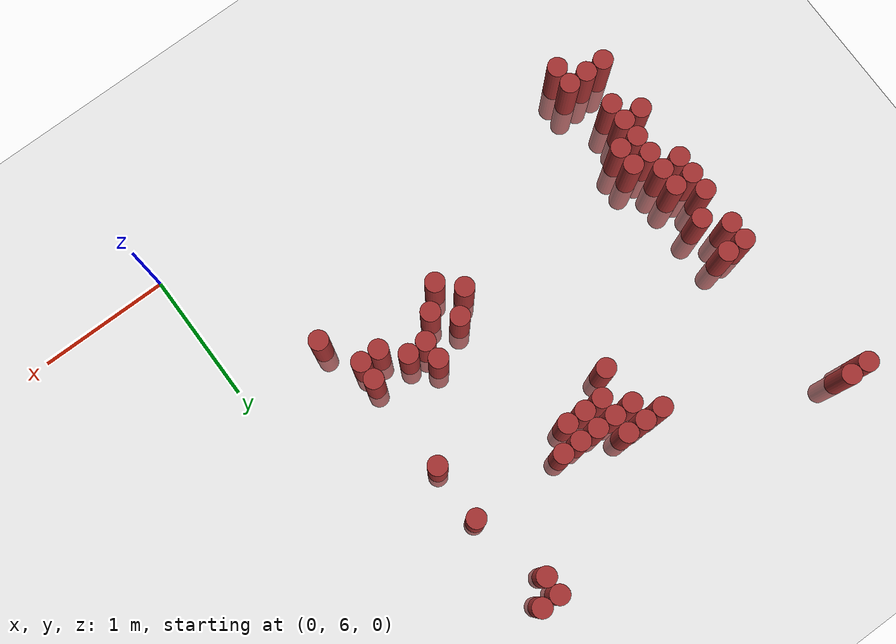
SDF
<sdf version="1.6">
 <world name="default">
  <model name="ground_plane">
   <static>1</static>
   <link name="link">
    <collision name="collision">
     <geometry><plane><normal>0 0 1</normal><size>100 100</size></plane></geometry>
     <surface><friction><ode><mu>100</mu><mu2>50</mu2></ode></friction></surface>
    </collision>
    <visual name="visual">
     <cast_shadows>0</cast_shadows>
     <geometry><plane><normal>0 0 1</normal><size>100 100</size></plane></geometry>
     <material>
      <script><uri>file://media/materials/scripts/gazebo.material</uri><name>Gazebo/Grey</name></script>
     </material>
    </visual>
   </link>
  </model>
  <model name="unit_cylinder_167">
   <static>1</static>
   <pose>-3.675000 9.525000 0.000000 0.000000 0.000000 0.000000</pose>
   <link name="link">
    <inertial>
     <mass>1</mass>
     <inertia><ixx>0.145833</ixx><ixy>0</ixy><ixz>0</ixz><iyy>0.145833</iyy><iyz>0</iyz><izz>0.125</izz></inertia>
    </inertial>
    <collision name="collision">
     <geometry><cylinder><radius>0.075000</radius><length>1</length></cylinder></geometry>
    </collision>
    <visual name="visual">
     <geometry><cylinder><radius>0.075000</radius><length>1</length></cylinder></geometry>
     <material>
      <ambient>0.648000 0.192000 0.192000 1</ambient>
      <diffuse>0.648000 0.192000 0.192000 1</diffuse>
     </material>
     <material>
      <script><name>Gazebo/Grey</name><uri>file://media/materials/scripts/gazebo.material</uri></script>
     </material>
    </visual>
   </link>
  </model>
  <model name="unit_cylinder_169">
   <static>1</static>
   <pose>-3.525000 6.675000 0.000000 0.000000 0.000000 0.000000</pose>
   <link name="link">
    <inertial>
     <mass>1</mass>
     <inertia><ixx>0.145833</ixx><ixy>0</ixy><ixz>0</ixz><iyy>0.145833</iyy><iyz>0</iyz><izz>0.125</izz></inertia>
    </inertial>
    <collision name="collision">
     <geometry><cylinder><radius>0.075000</radius><length>1</length></cylinder></geometry>
    </collision>
    <visual name="visual">
     <geometry><cylinder><radius>0.075000</radius><length>1</length></cylinder></geometry>
     <material>
      <ambient>0.648000 0.192000 0.192000 1</ambient>
      <diffuse>0.648000 0.192000 0.192000 1</diffuse>
     </material>
     <material>
      <script><name>Gazebo/Grey</name><uri>file://media/materials/scripts/gazebo.material</uri></script>
     </material>
    </visual>
   </link>
  </model>
  <model name="unit_cylinder_170">
   <static>1</static>
   <pose>-3.525000 7.125000 0.000000 0.000000 0.000000 0.000000</pose>
   <link name="link">
    <inertial>
     <mass>1</mass>
     <inertia><ixx>0.145833</ixx><ixy>0</ixy><ixz>0</ixz><iyy>0.145833</iyy><iyz>0</iyz><izz>0.125</izz></inertia>
    </inertial>
    <collision name="collision">
     <geometry><cylinder><radius>0.075000</radius><length>1</length></cylinder></geometry>
    </collision>
    <visual name="visual">
     <geometry><cylinder><radius>0.075000</radius><length>1</length></cylinder></geometry>
     <material>
      <ambient>0.648000 0.192000 0.192000 1</ambient>
      <diffuse>0.648000 0.192000 0.192000 1</diffuse>
     </material>
     <material>
      <script><name>Gazebo/Grey</name><uri>file://media/materials/scripts/gazebo.material</uri></script>
     </material>
    </visual>
   </link>
  </model>
  <model name="unit_cylinder_171">
   <static>1</static>
   <pose>-3.525000 7.575000 0.000000 0.000000 0.000000 0.000000</pose>
   <link name="link">
    <inertial>
     <mass>1</mass>
     <inertia><ixx>0.145833</ixx><ixy>0</ixy><ixz>0</ixz><iyy>0.145833</iyy><iyz>0</iyz><izz>0.125</izz></inertia>
    </inertial>
    <collision name="collision">
     <geometry><cylinder><radius>0.075000</radius><length>1</length></cylinder></geometry>
    </collision>
    <visual name="visual">
     <geometry><cylinder><radius>0.075000</radius><length>1</length></cylinder></geometry>
     <material>
      <ambient>0.648000 0.192000 0.192000 1</ambient>
      <diffuse>0.648000 0.192000 0.192000 1</diffuse>
     </material>
     <material>
      <script><name>Gazebo/Grey</name><uri>file://media/materials/scripts/gazebo.material</uri></script>
     </material>
    </visual>
   </link>
  </model>
  <model name="unit_cylinder_172">
   <static>1</static>
   <pose>-3.525000 7.725000 0.000000 0.000000 0.000000 0.000000</pose>
   <link name="link">
    <inertial>
     <mass>1</mass>
     <inertia><ixx>0.145833</ixx><ixy>0</ixy><ixz>0</ixz><iyy>0.145833</iyy><iyz>0</iyz><izz>0.125</izz></inertia>
    </inertial>
    <collision name="collision">
     <geometry><cylinder><radius>0.075000</radius><length>1</length></cylinder></geometry>
    </collision>
    <visual name="visual">
     <geometry><cylinder><radius>0.075000</radius><length>1</length></cylinder></geometry>
     <material>
      <ambient>0.648000 0.192000 0.192000 1</ambient>
      <diffuse>0.648000 0.192000 0.192000 1</diffuse>
     </material>
     <material>
      <script><name>Gazebo/Grey</name><uri>file://media/materials/scripts/gazebo.material</uri></script>
     </material>
    </visual>
   </link>
  </model>
  <model name="unit_cylinder_173">
   <static>1</static>
   <pose>-3.525000 7.875000 0.000000 0.000000 0.000000 0.000000</pose>
   <link name="link">
    <inertial>
     <mass>1</mass>
     <inertia><ixx>0.145833</ixx><ixy>0</ixy><ixz>0</ixz><iyy>0.145833</iyy><iyz>0</iyz><izz>0.125</izz></inertia>
    </inertial>
    <collision name="collision">
     <geometry><cylinder><radius>0.075000</radius><length>1</length></cylinder></geometry>
    </collision>
    <visual name="visual">
     <geometry><cylinder><radius>0.075000</radius><length>1</length></cylinder></geometry>
     <material>
      <ambient>0.648000 0.192000 0.192000 1</ambient>
      <diffuse>0.648000 0.192000 0.192000 1</diffuse>
     </material>
     <material>
      <script><name>Gazebo/Grey</name><uri>file://media/materials/scripts/gazebo.material</uri></script>
     </material>
    </visual>
   </link>
  </model>
  <model name="unit_cylinder_174">
   <static>1</static>
   <pose>-3.525000 8.175000 0.000000 0.000000 0.000000 0.000000</pose>
   <link name="link">
    <inertial>
     <mass>1</mass>
     <inertia><ixx>0.145833</ixx><ixy>0</ixy><ixz>0</ixz><iyy>0.145833</iyy><iyz>0</iyz><izz>0.125</izz></inertia>
    </inertial>
    <collision name="collision">
     <geometry><cylinder><radius>0.075000</radius><length>1</length></cylinder></geometry>
    </collision>
    <visual name="visual">
     <geometry><cylinder><radius>0.075000</radius><length>1</length></cylinder></geometry>
     <material>
      <ambient>0.648000 0.192000 0.192000 1</ambient>
      <diffuse>0.648000 0.192000 0.192000 1</diffuse>
     </material>
     <material>
      <script><name>Gazebo/Grey</name><uri>file://media/materials/scripts/gazebo.material</uri></script>
     </material>
    </visual>
   </link>
  </model>
  <model name="unit_cylinder_175">
   <static>1</static>
   <pose>-3.525000 8.325000 0.000000 0.000000 0.000000 0.000000</pose>
   <link name="link">
    <inertial>
     <mass>1</mass>
     <inertia><ixx>0.145833</ixx><ixy>0</ixy><ixz>0</ixz><iyy>0.145833</iyy><iyz>0</iyz><izz>0.125</izz></inertia>
    </inertial>
    <collision name="collision">
     <geometry><cylinder><radius>0.075000</radius><length>1</length></cylinder></geometry>
    </collision>
    <visual name="visual">
     <geometry><cylinder><radius>0.075000</radius><length>1</length></cylinder></geometry>
     <material>
      <ambient>0.648000 0.192000 0.192000 1</ambient>
      <diffuse>0.648000 0.192000 0.192000 1</diffuse>
     </material>
     <material>
      <script><name>Gazebo/Grey</name><uri>file://media/materials/scripts/gazebo.material</uri></script>
     </material>
    </visual>
   </link>
  </model>
  <model name="unit_cylinder_176">
   <static>1</static>
   <pose>-3.525000 9.525000 0.000000 0.000000 0.000000 0.000000</pose>
   <link name="link">
    <inertial>
     <mass>1</mass>
     <inertia><ixx>0.145833</ixx><ixy>0</ixy><ixz>0</ixz><iyy>0.145833</iyy><iyz>0</iyz><izz>0.125</izz></inertia>
    </inertial>
    <collision name="collision">
     <geometry><cylinder><radius>0.075000</radius><length>1</length></cylinder></geometry>
    </collision>
    <visual name="visual">
     <geometry><cylinder><radius>0.075000</radius><length>1</length></cylinder></geometry>
     <material>
      <ambient>0.648000 0.192000 0.192000 1</ambient>
      <diffuse>0.648000 0.192000 0.192000 1</diffuse>
     </material>
     <material>
      <script><name>Gazebo/Grey</name><uri>file://media/materials/scripts/gazebo.material</uri></script>
     </material>
    </visual>
   </link>
  </model>
  <model name="unit_cylinder_179">
   <static>1</static>
   <pose>-3.375000 6.675000 0.000000 0.000000 0.000000 0.000000</pose>
   <link name="link">
    <inertial>
     <mass>1</mass>
     <inertia><ixx>0.145833</ixx><ixy>0</ixy><ixz>0</ixz><iyy>0.145833</iyy><iyz>0</iyz><izz>0.125</izz></inertia>
    </inertial>
    <collision name="collision">
     <geometry><cylinder><radius>0.075000</radius><length>1</length></cylinder></geometry>
    </collision>
    <visual name="visual">
     <geometry><cylinder><radius>0.075000</radius><length>1</length></cylinder></geometry>
     <material>
      <ambient>0.648000 0.192000 0.192000 1</ambient>
      <diffuse>0.648000 0.192000 0.192000 1</diffuse>
     </material>
     <material>
      <script><name>Gazebo/Grey</name><uri>file://media/materials/scripts/gazebo.material</uri></script>
     </material>
    </visual>
   </link>
  </model>
  <model name="unit_cylinder_180">
   <static>1</static>
   <pose>-3.375000 6.975000 0.000000 0.000000 0.000000 0.000000</pose>
   <link name="link">
    <inertial>
     <mass>1</mass>
     <inertia><ixx>0.145833</ixx><ixy>0</ixy><ixz>0</ixz><iyy>0.145833</iyy><iyz>0</iyz><izz>0.125</izz></inertia>
    </inertial>
    <collision name="collision">
     <geometry><cylinder><radius>0.075000</radius><length>1</length></cylinder></geometry>
    </collision>
    <visual name="visual">
     <geometry><cylinder><radius>0.075000</radius><length>1</length></cylinder></geometry>
     <material>
      <ambient>0.648000 0.192000 0.192000 1</ambient>
      <diffuse>0.648000 0.192000 0.192000 1</diffuse>
     </material>
     <material>
      <script><name>Gazebo/Grey</name><uri>file://media/materials/scripts/gazebo.material</uri></script>
     </material>
    </visual>
   </link>
  </model>
  <model name="unit_cylinder_181">
   <static>1</static>
   <pose>-3.375000 7.125000 0.000000 0.000000 0.000000 0.000000</pose>
   <link name="link">
    <inertial>
     <mass>1</mass>
     <inertia><ixx>0.145833</ixx><ixy>0</ixy><ixz>0</ixz><iyy>0.145833</iyy><iyz>0</iyz><izz>0.125</izz></inertia>
    </inertial>
    <collision name="collision">
     <geometry><cylinder><radius>0.075000</radius><length>1</length></cylinder></geometry>
    </collision>
    <visual name="visual">
     <geometry><cylinder><radius>0.075000</radius><length>1</length></cylinder></geometry>
     <material>
      <ambient>0.648000 0.192000 0.192000 1</ambient>
      <diffuse>0.648000 0.192000 0.192000 1</diffuse>
     </material>
     <material>
      <script><name>Gazebo/Grey</name><uri>file://media/materials/scripts/gazebo.material</uri></script>
     </material>
    </visual>
   </link>
  </model>
  <model name="unit_cylinder_182">
   <static>1</static>
   <pose>-3.375000 7.275000 0.000000 0.000000 0.000000 0.000000</pose>
   <link name="link">
    <inertial>
     <mass>1</mass>
     <inertia><ixx>0.145833</ixx><ixy>0</ixy><ixz>0</ixz><iyy>0.145833</iyy><iyz>0</iyz><izz>0.125</izz></inertia>
    </inertial>
    <collision name="collision">
     <geometry><cylinder><radius>0.075000</radius><length>1</length></cylinder></geometry>
    </collision>
    <visual name="visual">
     <geometry><cylinder><radius>0.075000</radius><length>1</length></cylinder></geometry>
     <material>
      <ambient>0.648000 0.192000 0.192000 1</ambient>
      <diffuse>0.648000 0.192000 0.192000 1</diffuse>
     </material>
     <material>
      <script><name>Gazebo/Grey</name><uri>file://media/materials/scripts/gazebo.material</uri></script>
     </material>
    </visual>
   </link>
  </model>
  <model name="unit_cylinder_183">
   <static>1</static>
   <pose>-3.375000 7.425000 0.000000 0.000000 0.000000 0.000000</pose>
   <link name="link">
    <inertial>
     <mass>1</mass>
     <inertia><ixx>0.145833</ixx><ixy>0</ixy><ixz>0</ixz><iyy>0.145833</iyy><iyz>0</iyz><izz>0.125</izz></inertia>
    </inertial>
    <collision name="collision">
     <geometry><cylinder><radius>0.075000</radius><length>1</length></cylinder></geometry>
    </collision>
    <visual name="visual">
     <geometry><cylinder><radius>0.075000</radius><length>1</length></cylinder></geometry>
     <material>
      <ambient>0.648000 0.192000 0.192000 1</ambient>
      <diffuse>0.648000 0.192000 0.192000 1</diffuse>
     </material>
     <material>
      <script><name>Gazebo/Grey</name><uri>file://media/materials/scripts/gazebo.material</uri></script>
     </material>
    </visual>
   </link>
  </model>
  <model name="unit_cylinder_184">
   <static>1</static>
   <pose>-3.375000 7.575000 0.000000 0.000000 0.000000 0.000000</pose>
   <link name="link">
    <inertial>
     <mass>1</mass>
     <inertia><ixx>0.145833</ixx><ixy>0</ixy><ixz>0</ixz><iyy>0.145833</iyy><iyz>0</iyz><izz>0.125</izz></inertia>
    </inertial>
    <collision name="collision">
     <geometry><cylinder><radius>0.075000</radius><length>1</length></cylinder></geometry>
    </collision>
    <visual name="visual">
     <geometry><cylinder><radius>0.075000</radius><length>1</length></cylinder></geometry>
     <material>
      <ambient>0.648000 0.192000 0.192000 1</ambient>
      <diffuse>0.648000 0.192000 0.192000 1</diffuse>
     </material>
     <material>
      <script><name>Gazebo/Grey</name><uri>file://media/materials/scripts/gazebo.material</uri></script>
     </material>
    </visual>
   </link>
  </model>
  <model name="unit_cylinder_185">
   <static>1</static>
   <pose>-3.375000 7.725000 0.000000 0.000000 0.000000 0.000000</pose>
   <link name="link">
    <inertial>
     <mass>1</mass>
     <inertia><ixx>0.145833</ixx><ixy>0</ixy><ixz>0</ixz><iyy>0.145833</iyy><iyz>0</iyz><izz>0.125</izz></inertia>
    </inertial>
    <collision name="collision">
     <geometry><cylinder><radius>0.075000</radius><length>1</length></cylinder></geometry>
    </collision>
    <visual name="visual">
     <geometry><cylinder><radius>0.075000</radius><length>1</length></cylinder></geometry>
     <material>
      <ambient>0.648000 0.192000 0.192000 1</ambient>
      <diffuse>0.648000 0.192000 0.192000 1</diffuse>
     </material>
     <material>
      <script><name>Gazebo/Grey</name><uri>file://media/materials/scripts/gazebo.material</uri></script>
     </material>
    </visual>
   </link>
  </model>
  <model name="unit_cylinder_186">
   <static>1</static>
   <pose>-3.375000 8.025000 0.000000 0.000000 0.000000 0.000000</pose>
   <link name="link">
    <inertial>
     <mass>1</mass>
     <inertia><ixx>0.145833</ixx><ixy>0</ixy><ixz>0</ixz><iyy>0.145833</iyy><iyz>0</iyz><izz>0.125</izz></inertia>
    </inertial>
    <collision name="collision">
     <geometry><cylinder><radius>0.075000</radius><length>1</length></cylinder></geometry>
    </collision>
    <visual name="visual">
     <geometry><cylinder><radius>0.075000</radius><length>1</length></cylinder></geometry>
     <material>
      <ambient>0.648000 0.192000 0.192000 1</ambient>
      <diffuse>0.648000 0.192000 0.192000 1</diffuse>
     </material>
     <material>
      <script><name>Gazebo/Grey</name><uri>file://media/materials/scripts/gazebo.material</uri></script>
     </material>
    </visual>
   </link>
  </model>
  <model name="unit_cylinder_187">
   <static>1</static>
   <pose>-3.375000 8.325000 0.000000 0.000000 0.000000 0.000000</pose>
   <link name="link">
    <inertial>
     <mass>1</mass>
     <inertia><ixx>0.145833</ixx><ixy>0</ixy><ixz>0</ixz><iyy>0.145833</iyy><iyz>0</iyz><izz>0.125</izz></inertia>
    </inertial>
    <collision name="collision">
     <geometry><cylinder><radius>0.075000</radius><length>1</length></cylinder></geometry>
    </collision>
    <visual name="visual">
     <geometry><cylinder><radius>0.075000</radius><length>1</length></cylinder></geometry>
     <material>
      <ambient>0.648000 0.192000 0.192000 1</ambient>
      <diffuse>0.648000 0.192000 0.192000 1</diffuse>
     </material>
     <material>
      <script><name>Gazebo/Grey</name><uri>file://media/materials/scripts/gazebo.material</uri></script>
     </material>
    </visual>
   </link>
  </model>
  <model name="unit_cylinder_194">
   <static>1</static>
   <pose>-3.225000 6.525000 0.000000 0.000000 0.000000 0.000000</pose>
   <link name="link">
    <inertial>
     <mass>1</mass>
     <inertia><ixx>0.145833</ixx><ixy>0</ixy><ixz>0</ixz><iyy>0.145833</iyy><iyz>0</iyz><izz>0.125</izz></inertia>
    </inertial>
    <collision name="collision">
     <geometry><cylinder><radius>0.075000</radius><length>1</length></cylinder></geometry>
    </collision>
    <visual name="visual">
     <geometry><cylinder><radius>0.075000</radius><length>1</length></cylinder></geometry>
     <material>
      <ambient>0.648000 0.192000 0.192000 1</ambient>
      <diffuse>0.648000 0.192000 0.192000 1</diffuse>
     </material>
     <material>
      <script><name>Gazebo/Grey</name><uri>file://media/materials/scripts/gazebo.material</uri></script>
     </material>
    </visual>
   </link>
  </model>
  <model name="unit_cylinder_195">
   <static>1</static>
   <pose>-3.225000 6.675000 0.000000 0.000000 0.000000 0.000000</pose>
   <link name="link">
    <inertial>
     <mass>1</mass>
     <inertia><ixx>0.145833</ixx><ixy>0</ixy><ixz>0</ixz><iyy>0.145833</iyy><iyz>0</iyz><izz>0.125</izz></inertia>
    </inertial>
    <collision name="collision">
     <geometry><cylinder><radius>0.075000</radius><length>1</length></cylinder></geometry>
    </collision>
    <visual name="visual">
     <geometry><cylinder><radius>0.075000</radius><length>1</length></cylinder></geometry>
     <material>
      <ambient>0.648000 0.192000 0.192000 1</ambient>
      <diffuse>0.648000 0.192000 0.192000 1</diffuse>
     </material>
     <material>
      <script><name>Gazebo/Grey</name><uri>file://media/materials/scripts/gazebo.material</uri></script>
     </material>
    </visual>
   </link>
  </model>
  <model name="unit_cylinder_196">
   <static>1</static>
   <pose>-3.225000 7.275000 0.000000 0.000000 0.000000 0.000000</pose>
   <link name="link">
    <inertial>
     <mass>1</mass>
     <inertia><ixx>0.145833</ixx><ixy>0</ixy><ixz>0</ixz><iyy>0.145833</iyy><iyz>0</iyz><izz>0.125</izz></inertia>
    </inertial>
    <collision name="collision">
     <geometry><cylinder><radius>0.075000</radius><length>1</length></cylinder></geometry>
    </collision>
    <visual name="visual">
     <geometry><cylinder><radius>0.075000</radius><length>1</length></cylinder></geometry>
     <material>
      <ambient>0.648000 0.192000 0.192000 1</ambient>
      <diffuse>0.648000 0.192000 0.192000 1</diffuse>
     </material>
     <material>
      <script><name>Gazebo/Grey</name><uri>file://media/materials/scripts/gazebo.material</uri></script>
     </material>
    </visual>
   </link>
  </model>
  <model name="unit_cylinder_197">
   <static>1</static>
   <pose>-3.225000 7.425000 0.000000 0.000000 0.000000 0.000000</pose>
   <link name="link">
    <inertial>
     <mass>1</mass>
     <inertia><ixx>0.145833</ixx><ixy>0</ixy><ixz>0</ixz><iyy>0.145833</iyy><iyz>0</iyz><izz>0.125</izz></inertia>
    </inertial>
    <collision name="collision">
     <geometry><cylinder><radius>0.075000</radius><length>1</length></cylinder></geometry>
    </collision>
    <visual name="visual">
     <geometry><cylinder><radius>0.075000</radius><length>1</length></cylinder></geometry>
     <material>
      <ambient>0.648000 0.192000 0.192000 1</ambient>
      <diffuse>0.648000 0.192000 0.192000 1</diffuse>
     </material>
     <material>
      <script><name>Gazebo/Grey</name><uri>file://media/materials/scripts/gazebo.material</uri></script>
     </material>
    </visual>
   </link>
  </model>
  <model name="unit_cylinder_205">
   <static>1</static>
   <pose>-2.325000 8.925000 0.000000 0.000000 0.000000 0.000000</pose>
   <link name="link">
    <inertial>
     <mass>1</mass>
     <inertia><ixx>0.145833</ixx><ixy>0</ixy><ixz>0</ixz><iyy>0.145833</iyy><iyz>0</iyz><izz>0.125</izz></inertia>
    </inertial>
    <collision name="collision">
     <geometry><cylinder><radius>0.075000</radius><length>1</length></cylinder></geometry>
    </collision>
    <visual name="visual">
     <geometry><cylinder><radius>0.075000</radius><length>1</length></cylinder></geometry>
     <material>
      <ambient>0.648000 0.192000 0.192000 1</ambient>
      <diffuse>0.648000 0.192000 0.192000 1</diffuse>
     </material>
     <material>
      <script><name>Gazebo/Grey</name><uri>file://media/materials/scripts/gazebo.material</uri></script>
     </material>
    </visual>
   </link>
  </model>
  <model name="unit_cylinder_206">
   <static>1</static>
   <pose>-2.175000 8.475000 0.000000 0.000000 0.000000 0.000000</pose>
   <link name="link">
    <inertial>
     <mass>1</mass>
     <inertia><ixx>0.145833</ixx><ixy>0</ixy><ixz>0</ixz><iyy>0.145833</iyy><iyz>0</iyz><izz>0.125</izz></inertia>
    </inertial>
    <collision name="collision">
     <geometry><cylinder><radius>0.075000</radius><length>1</length></cylinder></geometry>
    </collision>
    <visual name="visual">
     <geometry><cylinder><radius>0.075000</radius><length>1</length></cylinder></geometry>
     <material>
      <ambient>0.648000 0.192000 0.192000 1</ambient>
      <diffuse>0.648000 0.192000 0.192000 1</diffuse>
     </material>
     <material>
      <script><name>Gazebo/Grey</name><uri>file://media/materials/scripts/gazebo.material</uri></script>
     </material>
    </visual>
   </link>
  </model>
  <model name="unit_cylinder_207">
   <static>1</static>
   <pose>-2.175000 8.775000 0.000000 0.000000 0.000000 0.000000</pose>
   <link name="link">
    <inertial>
     <mass>1</mass>
     <inertia><ixx>0.145833</ixx><ixy>0</ixy><ixz>0</ixz><iyy>0.145833</iyy><iyz>0</iyz><izz>0.125</izz></inertia>
    </inertial>
    <collision name="collision">
     <geometry><cylinder><radius>0.075000</radius><length>1</length></cylinder></geometry>
    </collision>
    <visual name="visual">
     <geometry><cylinder><radius>0.075000</radius><length>1</length></cylinder></geometry>
     <material>
      <ambient>0.648000 0.192000 0.192000 1</ambient>
      <diffuse>0.648000 0.192000 0.192000 1</diffuse>
     </material>
     <material>
      <script><name>Gazebo/Grey</name><uri>file://media/materials/scripts/gazebo.material</uri></script>
     </material>
    </visual>
   </link>
  </model>
  <model name="unit_cylinder_208">
   <static>1</static>
   <pose>-2.175000 8.925000 0.000000 0.000000 0.000000 0.000000</pose>
   <link name="link">
    <inertial>
     <mass>1</mass>
     <inertia><ixx>0.145833</ixx><ixy>0</ixy><ixz>0</ixz><iyy>0.145833</iyy><iyz>0</iyz><izz>0.125</izz></inertia>
    </inertial>
    <collision name="collision">
     <geometry><cylinder><radius>0.075000</radius><length>1</length></cylinder></geometry>
    </collision>
    <visual name="visual">
     <geometry><cylinder><radius>0.075000</radius><length>1</length></cylinder></geometry>
     <material>
      <ambient>0.648000 0.192000 0.192000 1</ambient>
      <diffuse>0.648000 0.192000 0.192000 1</diffuse>
     </material>
     <material>
      <script><name>Gazebo/Grey</name><uri>file://media/materials/scripts/gazebo.material</uri></script>
     </material>
    </visual>
   </link>
  </model>
  <model name="unit_cylinder_209">
   <static>1</static>
   <pose>-2.025000 8.625000 0.000000 0.000000 0.000000 0.000000</pose>
   <link name="link">
    <inertial>
     <mass>1</mass>
     <inertia><ixx>0.145833</ixx><ixy>0</ixy><ixz>0</ixz><iyy>0.145833</iyy><iyz>0</iyz><izz>0.125</izz></inertia>
    </inertial>
    <collision name="collision">
     <geometry><cylinder><radius>0.075000</radius><length>1</length></cylinder></geometry>
    </collision>
    <visual name="visual">
     <geometry><cylinder><radius>0.075000</radius><length>1</length></cylinder></geometry>
     <material>
      <ambient>0.648000 0.192000 0.192000 1</ambient>
      <diffuse>0.648000 0.192000 0.192000 1</diffuse>
     </material>
     <material>
      <script><name>Gazebo/Grey</name><uri>file://media/materials/scripts/gazebo.material</uri></script>
     </material>
    </visual>
   </link>
  </model>
  <model name="unit_cylinder_210">
   <static>1</static>
   <pose>-2.025000 8.775000 0.000000 0.000000 0.000000 0.000000</pose>
   <link name="link">
    <inertial>
     <mass>1</mass>
     <inertia><ixx>0.145833</ixx><ixy>0</ixy><ixz>0</ixz><iyy>0.145833</iyy><iyz>0</iyz><izz>0.125</izz></inertia>
    </inertial>
    <collision name="collision">
     <geometry><cylinder><radius>0.075000</radius><length>1</length></cylinder></geometry>
    </collision>
    <visual name="visual">
     <geometry><cylinder><radius>0.075000</radius><length>1</length></cylinder></geometry>
     <material>
      <ambient>0.648000 0.192000 0.192000 1</ambient>
      <diffuse>0.648000 0.192000 0.192000 1</diffuse>
     </material>
     <material>
      <script><name>Gazebo/Grey</name><uri>file://media/materials/scripts/gazebo.material</uri></script>
     </material>
    </visual>
   </link>
  </model>
  <model name="unit_cylinder_211">
   <static>1</static>
   <pose>-2.025000 8.925000 0.000000 0.000000 0.000000 0.000000</pose>
   <link name="link">
    <inertial>
     <mass>1</mass>
     <inertia><ixx>0.145833</ixx><ixy>0</ixy><ixz>0</ixz><iyy>0.145833</iyy><iyz>0</iyz><izz>0.125</izz></inertia>
    </inertial>
    <collision name="collision">
     <geometry><cylinder><radius>0.075000</radius><length>1</length></cylinder></geometry>
    </collision>
    <visual name="visual">
     <geometry><cylinder><radius>0.075000</radius><length>1</length></cylinder></geometry>
     <material>
      <ambient>0.648000 0.192000 0.192000 1</ambient>
      <diffuse>0.648000 0.192000 0.192000 1</diffuse>
     </material>
     <material>
      <script><name>Gazebo/Grey</name><uri>file://media/materials/scripts/gazebo.material</uri></script>
     </material>
    </visual>
   </link>
  </model>
  <model name="unit_cylinder_212">
   <static>1</static>
   <pose>-1.875000 8.625000 0.000000 0.000000 0.000000 0.000000</pose>
   <link name="link">
    <inertial>
     <mass>1</mass>
     <inertia><ixx>0.145833</ixx><ixy>0</ixy><ixz>0</ixz><iyy>0.145833</iyy><iyz>0</iyz><izz>0.125</izz></inertia>
    </inertial>
    <collision name="collision">
     <geometry><cylinder><radius>0.075000</radius><length>1</length></cylinder></geometry>
    </collision>
    <visual name="visual">
     <geometry><cylinder><radius>0.075000</radius><length>1</length></cylinder></geometry>
     <material>
      <ambient>0.648000 0.192000 0.192000 1</ambient>
      <diffuse>0.648000 0.192000 0.192000 1</diffuse>
     </material>
     <material>
      <script><name>Gazebo/Grey</name><uri>file://media/materials/scripts/gazebo.material</uri></script>
     </material>
    </visual>
   </link>
  </model>
  <model name="unit_cylinder_213">
   <static>1</static>
   <pose>-1.875000 8.775000 0.000000 0.000000 0.000000 0.000000</pose>
   <link name="link">
    <inertial>
     <mass>1</mass>
     <inertia><ixx>0.145833</ixx><ixy>0</ixy><ixz>0</ixz><iyy>0.145833</iyy><iyz>0</iyz><izz>0.125</izz></inertia>
    </inertial>
    <collision name="collision">
     <geometry><cylinder><radius>0.075000</radius><length>1</length></cylinder></geometry>
    </collision>
    <visual name="visual">
     <geometry><cylinder><radius>0.075000</radius><length>1</length></cylinder></geometry>
     <material>
      <ambient>0.648000 0.192000 0.192000 1</ambient>
      <diffuse>0.648000 0.192000 0.192000 1</diffuse>
     </material>
     <material>
      <script><name>Gazebo/Grey</name><uri>file://media/materials/scripts/gazebo.material</uri></script>
     </material>
    </visual>
   </link>
  </model>
  <model name="unit_cylinder_214">
   <static>1</static>
   <pose>-1.725000 7.425000 0.000000 0.000000 0.000000 0.000000</pose>
   <link name="link">
    <inertial>
     <mass>1</mass>
     <inertia><ixx>0.145833</ixx><ixy>0</ixy><ixz>0</ixz><iyy>0.145833</iyy><iyz>0</iyz><izz>0.125</izz></inertia>
    </inertial>
    <collision name="collision">
     <geometry><cylinder><radius>0.075000</radius><length>1</length></cylinder></geometry>
    </collision>
    <visual name="visual">
     <geometry><cylinder><radius>0.075000</radius><length>1</length></cylinder></geometry>
     <material>
      <ambient>0.648000 0.192000 0.192000 1</ambient>
      <diffuse>0.648000 0.192000 0.192000 1</diffuse>
     </material>
     <material>
      <script><name>Gazebo/Grey</name><uri>file://media/materials/scripts/gazebo.material</uri></script>
     </material>
    </visual>
   </link>
  </model>
  <model name="unit_cylinder_215">
   <static>1</static>
   <pose>-1.725000 8.625000 0.000000 0.000000 0.000000 0.000000</pose>
   <link name="link">
    <inertial>
     <mass>1</mass>
     <inertia><ixx>0.145833</ixx><ixy>0</ixy><ixz>0</ixz><iyy>0.145833</iyy><iyz>0</iyz><izz>0.125</izz></inertia>
    </inertial>
    <collision name="collision">
     <geometry><cylinder><radius>0.075000</radius><length>1</length></cylinder></geometry>
    </collision>
    <visual name="visual">
     <geometry><cylinder><radius>0.075000</radius><length>1</length></cylinder></geometry>
     <material>
      <ambient>0.648000 0.192000 0.192000 1</ambient>
      <diffuse>0.648000 0.192000 0.192000 1</diffuse>
     </material>
     <material>
      <script><name>Gazebo/Grey</name><uri>file://media/materials/scripts/gazebo.material</uri></script>
     </material>
    </visual>
   </link>
  </model>
  <model name="unit_cylinder_216">
   <static>1</static>
   <pose>-1.725000 8.775000 0.000000 0.000000 0.000000 0.000000</pose>
   <link name="link">
    <inertial>
     <mass>1</mass>
     <inertia><ixx>0.145833</ixx><ixy>0</ixy><ixz>0</ixz><iyy>0.145833</iyy><iyz>0</iyz><izz>0.125</izz></inertia>
    </inertial>
    <collision name="collision">
     <geometry><cylinder><radius>0.075000</radius><length>1</length></cylinder></geometry>
    </collision>
    <visual name="visual">
     <geometry><cylinder><radius>0.075000</radius><length>1</length></cylinder></geometry>
     <material>
      <ambient>0.648000 0.192000 0.192000 1</ambient>
      <diffuse>0.648000 0.192000 0.192000 1</diffuse>
     </material>
     <material>
      <script><name>Gazebo/Grey</name><uri>file://media/materials/scripts/gazebo.material</uri></script>
     </material>
    </visual>
   </link>
  </model>
  <model name="unit_cylinder_219">
   <static>1</static>
   <pose>-1.575000 7.275000 0.000000 0.000000 0.000000 0.000000</pose>
   <link name="link">
    <inertial>
     <mass>1</mass>
     <inertia><ixx>0.145833</ixx><ixy>0</ixy><ixz>0</ixz><iyy>0.145833</iyy><iyz>0</iyz><izz>0.125</izz></inertia>
    </inertial>
    <collision name="collision">
     <geometry><cylinder><radius>0.075000</radius><length>1</length></cylinder></geometry>
    </collision>
    <visual name="visual">
     <geometry><cylinder><radius>0.075000</radius><length>1</length></cylinder></geometry>
     <material>
      <ambient>0.648000 0.192000 0.192000 1</ambient>
      <diffuse>0.648000 0.192000 0.192000 1</diffuse>
     </material>
     <material>
      <script><name>Gazebo/Grey</name><uri>file://media/materials/scripts/gazebo.material</uri></script>
     </material>
    </visual>
   </link>
  </model>
  <model name="unit_cylinder_220">
   <static>1</static>
   <pose>-1.575000 7.575000 0.000000 0.000000 0.000000 0.000000</pose>
   <link name="link">
    <inertial>
     <mass>1</mass>
     <inertia><ixx>0.145833</ixx><ixy>0</ixy><ixz>0</ixz><iyy>0.145833</iyy><iyz>0</iyz><izz>0.125</izz></inertia>
    </inertial>
    <collision name="collision">
     <geometry><cylinder><radius>0.075000</radius><length>1</length></cylinder></geometry>
    </collision>
    <visual name="visual">
     <geometry><cylinder><radius>0.075000</radius><length>1</length></cylinder></geometry>
     <material>
      <ambient>0.648000 0.192000 0.192000 1</ambient>
      <diffuse>0.648000 0.192000 0.192000 1</diffuse>
     </material>
     <material>
      <script><name>Gazebo/Grey</name><uri>file://media/materials/scripts/gazebo.material</uri></script>
     </material>
    </visual>
   </link>
  </model>
  <model name="unit_cylinder_221">
   <static>1</static>
   <pose>-1.575000 8.775000 0.000000 0.000000 0.000000 0.000000</pose>
   <link name="link">
    <inertial>
     <mass>1</mass>
     <inertia><ixx>0.145833</ixx><ixy>0</ixy><ixz>0</ixz><iyy>0.145833</iyy><iyz>0</iyz><izz>0.125</izz></inertia>
    </inertial>
    <collision name="collision">
     <geometry><cylinder><radius>0.075000</radius><length>1</length></cylinder></geometry>
    </collision>
    <visual name="visual">
     <geometry><cylinder><radius>0.075000</radius><length>1</length></cylinder></geometry>
     <material>
      <ambient>0.648000 0.192000 0.192000 1</ambient>
      <diffuse>0.648000 0.192000 0.192000 1</diffuse>
     </material>
     <material>
      <script><name>Gazebo/Grey</name><uri>file://media/materials/scripts/gazebo.material</uri></script>
     </material>
    </visual>
   </link>
  </model>
  <model name="unit_cylinder_224">
   <static>1</static>
   <pose>-1.425000 7.425000 0.000000 0.000000 0.000000 0.000000</pose>
   <link name="link">
    <inertial>
     <mass>1</mass>
     <inertia><ixx>0.145833</ixx><ixy>0</ixy><ixz>0</ixz><iyy>0.145833</iyy><iyz>0</iyz><izz>0.125</izz></inertia>
    </inertial>
    <collision name="collision">
     <geometry><cylinder><radius>0.075000</radius><length>1</length></cylinder></geometry>
    </collision>
    <visual name="visual">
     <geometry><cylinder><radius>0.075000</radius><length>1</length></cylinder></geometry>
     <material>
      <ambient>0.648000 0.192000 0.192000 1</ambient>
      <diffuse>0.648000 0.192000 0.192000 1</diffuse>
     </material>
     <material>
      <script><name>Gazebo/Grey</name><uri>file://media/materials/scripts/gazebo.material</uri></script>
     </material>
    </visual>
   </link>
  </model>
  <model name="unit_cylinder_225">
   <static>1</static>
   <pose>-1.275000 7.575000 0.000000 0.000000 0.000000 0.000000</pose>
   <link name="link">
    <inertial>
     <mass>1</mass>
     <inertia><ixx>0.145833</ixx><ixy>0</ixy><ixz>0</ixz><iyy>0.145833</iyy><iyz>0</iyz><izz>0.125</izz></inertia>
    </inertial>
    <collision name="collision">
     <geometry><cylinder><radius>0.075000</radius><length>1</length></cylinder></geometry>
    </collision>
    <visual name="visual">
     <geometry><cylinder><radius>0.075000</radius><length>1</length></cylinder></geometry>
     <material>
      <ambient>0.648000 0.192000 0.192000 1</ambient>
      <diffuse>0.648000 0.192000 0.192000 1</diffuse>
     </material>
     <material>
      <script><name>Gazebo/Grey</name><uri>file://media/materials/scripts/gazebo.material</uri></script>
     </material>
    </visual>
   </link>
  </model>
  <model name="unit_cylinder_226">
   <static>1</static>
   <pose>-1.275000 7.725000 0.000000 0.000000 0.000000 0.000000</pose>
   <link name="link">
    <inertial>
     <mass>1</mass>
     <inertia><ixx>0.145833</ixx><ixy>0</ixy><ixz>0</ixz><iyy>0.145833</iyy><iyz>0</iyz><izz>0.125</izz></inertia>
    </inertial>
    <collision name="collision">
     <geometry><cylinder><radius>0.075000</radius><length>1</length></cylinder></geometry>
    </collision>
    <visual name="visual">
     <geometry><cylinder><radius>0.075000</radius><length>1</length></cylinder></geometry>
     <material>
      <ambient>0.648000 0.192000 0.192000 1</ambient>
      <diffuse>0.648000 0.192000 0.192000 1</diffuse>
     </material>
     <material>
      <script><name>Gazebo/Grey</name><uri>file://media/materials/scripts/gazebo.material</uri></script>
     </material>
    </visual>
   </link>
  </model>
  <model name="unit_cylinder_227">
   <static>1</static>
   <pose>-1.125000 7.575000 0.000000 0.000000 0.000000 0.000000</pose>
   <link name="link">
    <inertial>
     <mass>1</mass>
     <inertia><ixx>0.145833</ixx><ixy>0</ixy><ixz>0</ixz><iyy>0.145833</iyy><iyz>0</iyz><izz>0.125</izz></inertia>
    </inertial>
    <collision name="collision">
     <geometry><cylinder><radius>0.075000</radius><length>1</length></cylinder></geometry>
    </collision>
    <visual name="visual">
     <geometry><cylinder><radius>0.075000</radius><length>1</length></cylinder></geometry>
     <material>
      <ambient>0.648000 0.192000 0.192000 1</ambient>
      <diffuse>0.648000 0.192000 0.192000 1</diffuse>
     </material>
     <material>
      <script><name>Gazebo/Grey</name><uri>file://media/materials/scripts/gazebo.material</uri></script>
     </material>
    </visual>
   </link>
  </model>
  <model name="unit_cylinder_228">
   <static>1</static>
   <pose>-0.975000 7.425000 0.000000 0.000000 0.000000 0.000000</pose>
   <link name="link">
    <inertial>
     <mass>1</mass>
     <inertia><ixx>0.145833</ixx><ixy>0</ixy><ixz>0</ixz><iyy>0.145833</iyy><iyz>0</iyz><izz>0.125</izz></inertia>
    </inertial>
    <collision name="collision">
     <geometry><cylinder><radius>0.075000</radius><length>1</length></cylinder></geometry>
    </collision>
    <visual name="visual">
     <geometry><cylinder><radius>0.075000</radius><length>1</length></cylinder></geometry>
     <material>
      <ambient>0.648000 0.192000 0.192000 1</ambient>
      <diffuse>0.648000 0.192000 0.192000 1</diffuse>
     </material>
     <material>
      <script><name>Gazebo/Grey</name><uri>file://media/materials/scripts/gazebo.material</uri></script>
     </material>
    </visual>
   </link>
  </model>
  <model name="unit_cylinder_229">
   <static>1</static>
   <pose>-0.975000 9.375000 0.000000 0.000000 0.000000 0.000000</pose>
   <link name="link">
    <inertial>
     <mass>1</mass>
     <inertia><ixx>0.145833</ixx><ixy>0</ixy><ixz>0</ixz><iyy>0.145833</iyy><iyz>0</iyz><izz>0.125</izz></inertia>
    </inertial>
    <collision name="collision">
     <geometry><cylinder><radius>0.075000</radius><length>1</length></cylinder></geometry>
    </collision>
    <visual name="visual">
     <geometry><cylinder><radius>0.075000</radius><length>1</length></cylinder></geometry>
     <material>
      <ambient>0.648000 0.192000 0.192000 1</ambient>
      <diffuse>0.648000 0.192000 0.192000 1</diffuse>
     </material>
     <material>
      <script><name>Gazebo/Grey</name><uri>file://media/materials/scripts/gazebo.material</uri></script>
     </material>
    </visual>
   </link>
  </model>
  <model name="unit_cylinder_230">
   <static>1</static>
   <pose>-0.975000 9.525000 0.000000 0.000000 0.000000 0.000000</pose>
   <link name="link">
    <inertial>
     <mass>1</mass>
     <inertia><ixx>0.145833</ixx><ixy>0</ixy><ixz>0</ixz><iyy>0.145833</iyy><iyz>0</iyz><izz>0.125</izz></inertia>
    </inertial>
    <collision name="collision">
     <geometry><cylinder><radius>0.075000</radius><length>1</length></cylinder></geometry>
    </collision>
    <visual name="visual">
     <geometry><cylinder><radius>0.075000</radius><length>1</length></cylinder></geometry>
     <material>
      <ambient>0.648000 0.192000 0.192000 1</ambient>
      <diffuse>0.648000 0.192000 0.192000 1</diffuse>
     </material>
     <material>
      <script><name>Gazebo/Grey</name><uri>file://media/materials/scripts/gazebo.material</uri></script>
     </material>
    </visual>
   </link>
  </model>
  <model name="unit_cylinder_231">
   <static>1</static>
   <pose>-0.825000 7.425000 0.000000 0.000000 0.000000 0.000000</pose>
   <link name="link">
    <inertial>
     <mass>1</mass>
     <inertia><ixx>0.145833</ixx><ixy>0</ixy><ixz>0</ixz><iyy>0.145833</iyy><iyz>0</iyz><izz>0.125</izz></inertia>
    </inertial>
    <collision name="collision">
     <geometry><cylinder><radius>0.075000</radius><length>1</length></cylinder></geometry>
    </collision>
    <visual name="visual">
     <geometry><cylinder><radius>0.075000</radius><length>1</length></cylinder></geometry>
     <material>
      <ambient>0.648000 0.192000 0.192000 1</ambient>
      <diffuse>0.648000 0.192000 0.192000 1</diffuse>
     </material>
     <material>
      <script><name>Gazebo/Grey</name><uri>file://media/materials/scripts/gazebo.material</uri></script>
     </material>
    </visual>
   </link>
  </model>
  <model name="unit_cylinder_232">
   <static>1</static>
   <pose>-0.825000 7.575000 0.000000 0.000000 0.000000 0.000000</pose>
   <link name="link">
    <inertial>
     <mass>1</mass>
     <inertia><ixx>0.145833</ixx><ixy>0</ixy><ixz>0</ixz><iyy>0.145833</iyy><iyz>0</iyz><izz>0.125</izz></inertia>
    </inertial>
    <collision name="collision">
     <geometry><cylinder><radius>0.075000</radius><length>1</length></cylinder></geometry>
    </collision>
    <visual name="visual">
     <geometry><cylinder><radius>0.075000</radius><length>1</length></cylinder></geometry>
     <material>
      <ambient>0.648000 0.192000 0.192000 1</ambient>
      <diffuse>0.648000 0.192000 0.192000 1</diffuse>
     </material>
     <material>
      <script><name>Gazebo/Grey</name><uri>file://media/materials/scripts/gazebo.material</uri></script>
     </material>
    </visual>
   </link>
  </model>
  <model name="unit_cylinder_233">
   <static>1</static>
   <pose>-0.825000 8.325000 0.000000 0.000000 0.000000 0.000000</pose>
   <link name="link">
    <inertial>
     <mass>1</mass>
     <inertia><ixx>0.145833</ixx><ixy>0</ixy><ixz>0</ixz><iyy>0.145833</iyy><iyz>0</iyz><izz>0.125</izz></inertia>
    </inertial>
    <collision name="collision">
     <geometry><cylinder><radius>0.075000</radius><length>1</length></cylinder></geometry>
    </collision>
    <visual name="visual">
     <geometry><cylinder><radius>0.075000</radius><length>1</length></cylinder></geometry>
     <material>
      <ambient>0.648000 0.192000 0.192000 1</ambient>
      <diffuse>0.648000 0.192000 0.192000 1</diffuse>
     </material>
     <material>
      <script><name>Gazebo/Grey</name><uri>file://media/materials/scripts/gazebo.material</uri></script>
     </material>
    </visual>
   </link>
  </model>
  <model name="unit_cylinder_234">
   <static>1</static>
   <pose>-0.825000 8.775000 0.000000 0.000000 0.000000 0.000000</pose>
   <link name="link">
    <inertial>
     <mass>1</mass>
     <inertia><ixx>0.145833</ixx><ixy>0</ixy><ixz>0</ixz><iyy>0.145833</iyy><iyz>0</iyz><izz>0.125</izz></inertia>
    </inertial>
    <collision name="collision">
     <geometry><cylinder><radius>0.075000</radius><length>1</length></cylinder></geometry>
    </collision>
    <visual name="visual">
     <geometry><cylinder><radius>0.075000</radius><length>1</length></cylinder></geometry>
     <material>
      <ambient>0.648000 0.192000 0.192000 1</ambient>
      <diffuse>0.648000 0.192000 0.192000 1</diffuse>
     </material>
     <material>
      <script><name>Gazebo/Grey</name><uri>file://media/materials/scripts/gazebo.material</uri></script>
     </material>
    </visual>
   </link>
  </model>
  <model name="unit_cylinder_235">
   <static>1</static>
   <pose>-0.825000 9.525000 0.000000 0.000000 0.000000 0.000000</pose>
   <link name="link">
    <inertial>
     <mass>1</mass>
     <inertia><ixx>0.145833</ixx><ixy>0</ixy><ixz>0</ixz><iyy>0.145833</iyy><iyz>0</iyz><izz>0.125</izz></inertia>
    </inertial>
    <collision name="collision">
     <geometry><cylinder><radius>0.075000</radius><length>1</length></cylinder></geometry>
    </collision>
    <visual name="visual">
     <geometry><cylinder><radius>0.075000</radius><length>1</length></cylinder></geometry>
     <material>
      <ambient>0.648000 0.192000 0.192000 1</ambient>
      <diffuse>0.648000 0.192000 0.192000 1</diffuse>
     </material>
     <material>
      <script><name>Gazebo/Grey</name><uri>file://media/materials/scripts/gazebo.material</uri></script>
     </material>
    </visual>
   </link>
  </model>
  <model name="unit_cylinder_236">
   <static>1</static>
   <pose>-0.675000 7.125000 0.000000 0.000000 0.000000 0.000000</pose>
   <link name="link">
    <inertial>
     <mass>1</mass>
     <inertia><ixx>0.145833</ixx><ixy>0</ixy><ixz>0</ixz><iyy>0.145833</iyy><iyz>0</iyz><izz>0.125</izz></inertia>
    </inertial>
    <collision name="collision">
     <geometry><cylinder><radius>0.075000</radius><length>1</length></cylinder></geometry>
    </collision>
    <visual name="visual">
     <geometry><cylinder><radius>0.075000</radius><length>1</length></cylinder></geometry>
     <material>
      <ambient>0.648000 0.192000 0.192000 1</ambient>
      <diffuse>0.648000 0.192000 0.192000 1</diffuse>
     </material>
     <material>
      <script><name>Gazebo/Grey</name><uri>file://media/materials/scripts/gazebo.material</uri></script>
     </material>
    </visual>
   </link>
  </model>
 </world>
</sdf>
